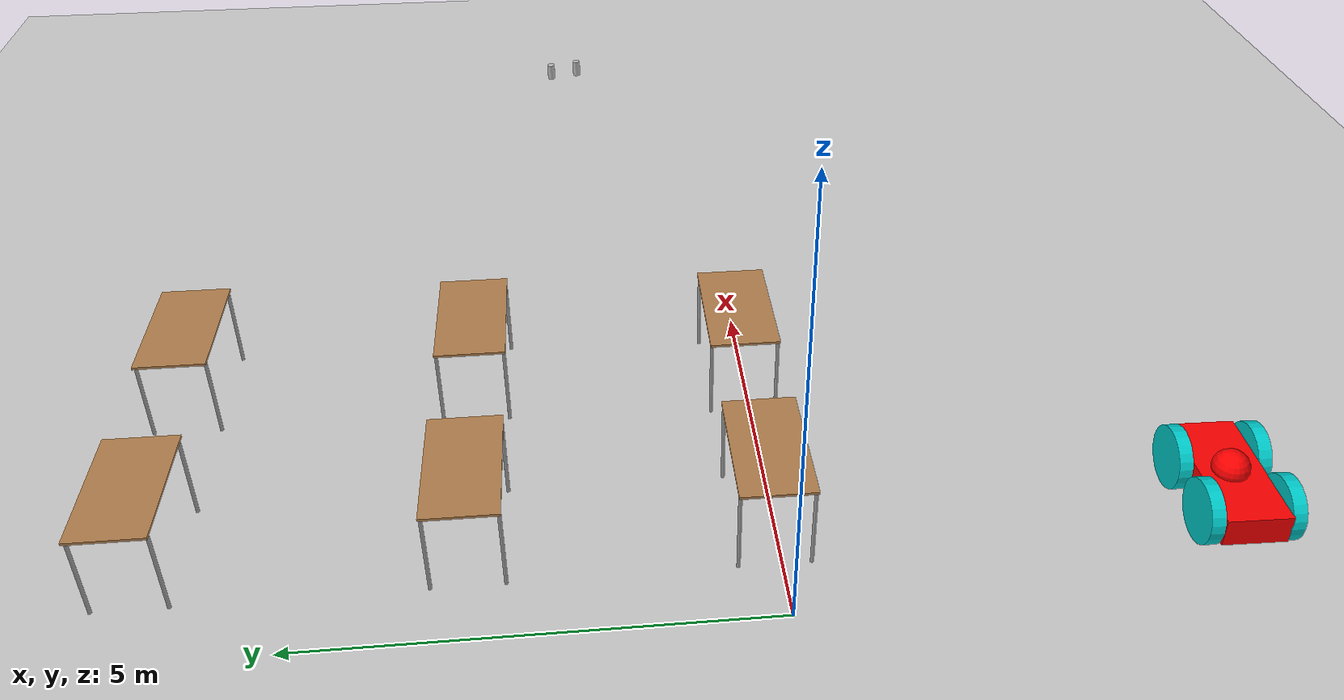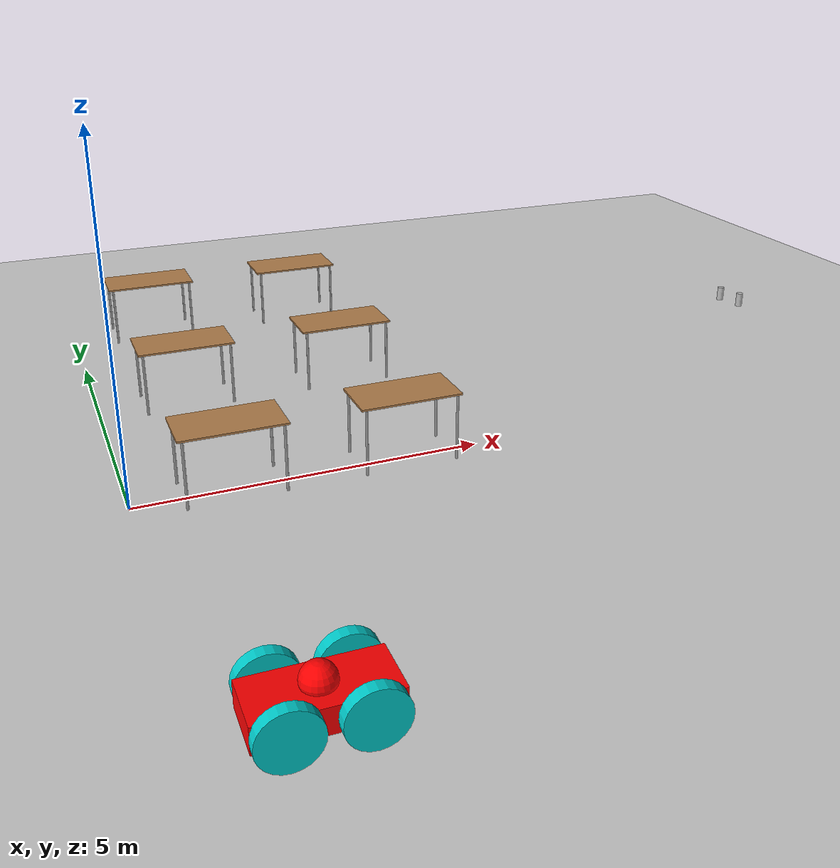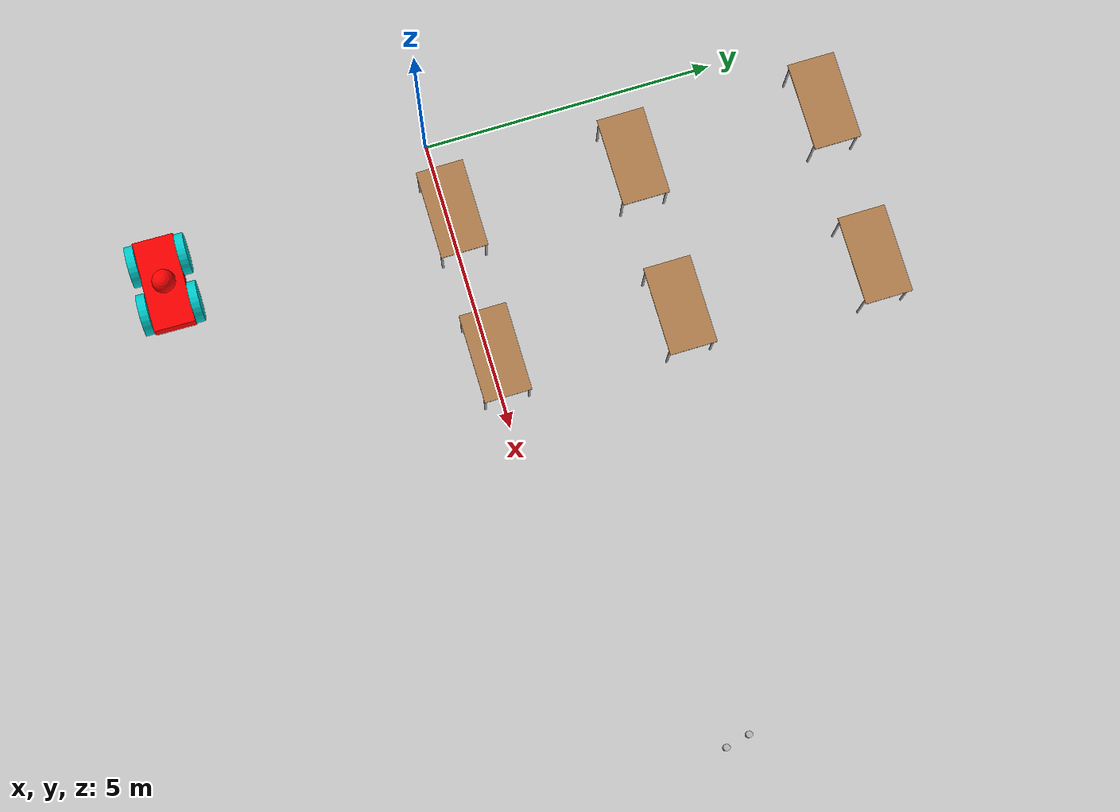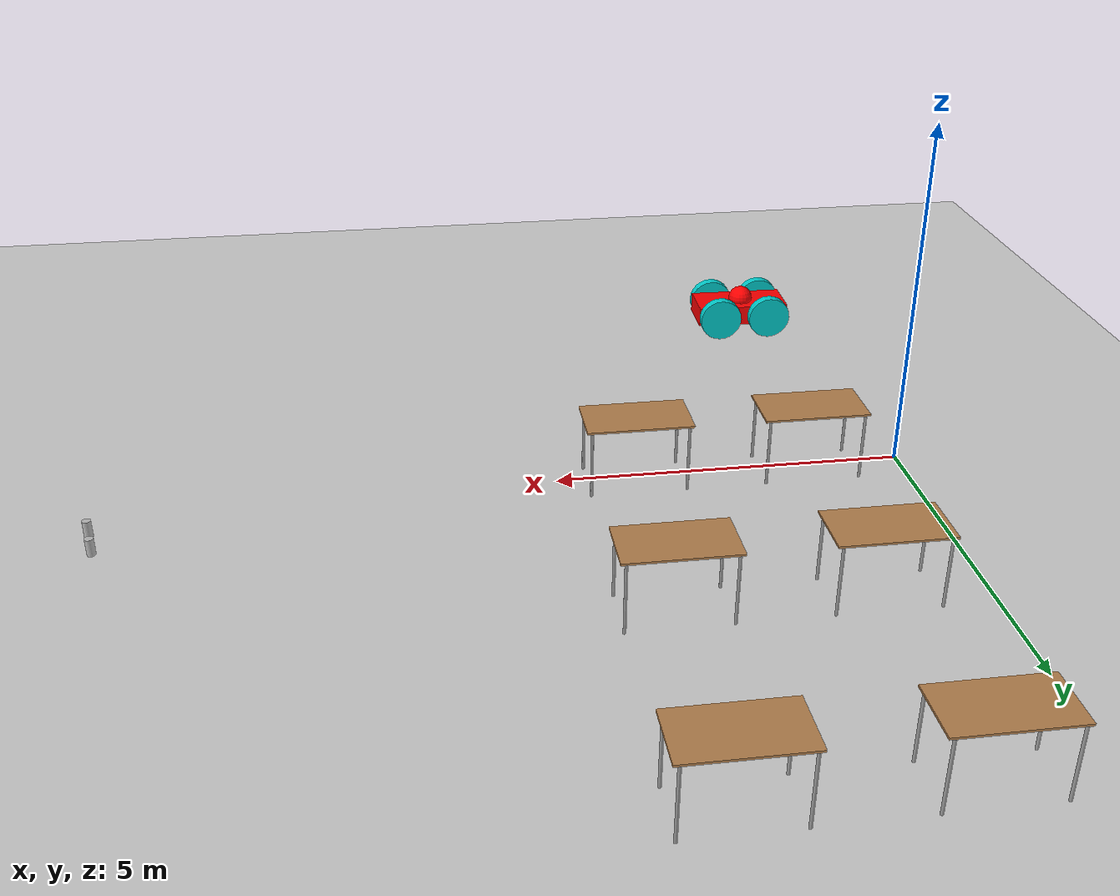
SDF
<sdf version="1.6">
 <world name="default">
  <model name="ground_plane">
   <static>1</static>
   <link name="link">
    <collision name="collision">
     <geometry><plane><normal>0 0 1</normal><size>100 100</size></plane></geometry>
     <surface>
      <contact><collide_bitmask>65535</collide_bitmask></contact>
      <friction><ode><mu>100</mu><mu2>50</mu2></ode></friction>
     </surface>
    </collision>
    <visual name="visual">
     <cast_shadows>0</cast_shadows>
     <geometry><plane><normal>0 0 1</normal><size>100 100</size></plane></geometry>
     <material>
      <script><uri>file://media/materials/scripts/gazebo.material</uri><name>Gazebo/Grey</name></script>
     </material>
    </visual>
   </link>
  </model>
  <model name="table">
   <static>1</static>
   <link name="link">
    <collision name="surface">
     <pose>0 0 1 0 -0 0</pose>
     <geometry><box><size>1.5 0.8 0.03</size></box></geometry>
     <surface><friction><ode><mu>0.6</mu><mu2>0.6</mu2></ode></friction></surface>
    </collision>
    <visual name="visual1">
     <pose>0 0 1 0 -0 0</pose>
     <geometry><box><size>1.5 0.8 0.03</size></box></geometry>
     <material>
      <script><uri>file://media/materials/scripts/gazebo.material</uri><name>Gazebo/Wood</name></script>
     </material>
    </visual>
    <collision name="front_left_leg">
     <pose>0.68 0.38 0.5 0 -0 0</pose>
     <geometry><cylinder><radius>0.02</radius><length>1</length></cylinder></geometry>
    </collision>
    <visual name="front_left_leg">
     <pose>0.68 0.38 0.5 0 -0 0</pose>
     <geometry><cylinder><radius>0.02</radius><length>1</length></cylinder></geometry>
     <material>
      <script><uri>file://media/materials/scripts/gazebo.material</uri><name>Gazebo/Grey</name></script>
     </material>
    </visual>
    <collision name="front_right_leg">
     <pose>0.68 -0.38 0.5 0 -0 0</pose>
     <geometry><cylinder><radius>0.02</radius><length>1</length></cylinder></geometry>
    </collision>
    <visual name="front_right_leg">
     <pose>0.68 -0.38 0.5 0 -0 0</pose>
     <geometry><cylinder><radius>0.02</radius><length>1</length></cylinder></geometry>
     <material>
      <script><uri>file://media/materials/scripts/gazebo.material</uri><name>Gazebo/Grey</name></script>
     </material>
    </visual>
    <collision name="back_right_leg">
     <pose>-0.68 -0.38 0.5 0 -0 0</pose>
     <geometry><cylinder><radius>0.02</radius><length>1</length></cylinder></geometry>
    </collision>
    <visual name="back_right_leg">
     <pose>-0.68 -0.38 0.5 0 -0 0</pose>
     <geometry><cylinder><radius>0.02</radius><length>1</length></cylinder></geometry>
     <material>
      <script><uri>file://media/materials/scripts/gazebo.material</uri><name>Gazebo/Grey</name></script>
     </material>
    </visual>
    <collision name="back_left_leg">
     <pose>-0.68 0.38 0.5 0 -0 0</pose>
     <geometry><cylinder><radius>0.02</radius><length>1</length></cylinder></geometry>
    </collision>
    <visual name="back_left_leg">
     <pose>-0.68 0.38 0.5 0 -0 0</pose>
     <geometry><cylinder><radius>0.02</radius><length>1</length></cylinder></geometry>
     <material>
      <script><uri>file://media/materials/scripts/gazebo.material</uri><name>Gazebo/Grey</name></script>
     </material>
    </visual>
   </link>
   <pose>1.38828 6.49824 0 0 -0 0</pose>
  </model>
  <model name="table_clone">
   <static>1</static>
   <link name="link">
    <collision name="surface">
     <pose>0 0 1 0 -0 0</pose>
     <geometry><box><size>1.5 0.8 0.03</size></box></geometry>
     <surface><friction><ode><mu>0.6</mu><mu2>0.6</mu2></ode></friction></surface>
    </collision>
    <visual name="visual1">
     <pose>0 0 1 0 -0 0</pose>
     <geometry><box><size>1.5 0.8 0.03</size></box></geometry>
     <material>
      <script><uri>file://media/materials/scripts/gazebo.material</uri><name>Gazebo/Wood</name></script>
     </material>
    </visual>
    <collision name="front_left_leg">
     <pose>0.68 0.38 0.5 0 -0 0</pose>
     <geometry><cylinder><radius>0.02</radius><length>1</length></cylinder></geometry>
    </collision>
    <visual name="front_left_leg">
     <pose>0.68 0.38 0.5 0 -0 0</pose>
     <geometry><cylinder><radius>0.02</radius><length>1</length></cylinder></geometry>
     <material>
      <script><uri>file://media/materials/scripts/gazebo.material</uri><name>Gazebo/Grey</name></script>
     </material>
    </visual>
    <collision name="front_right_leg">
     <pose>0.68 -0.38 0.5 0 -0 0</pose>
     <geometry><cylinder><radius>0.02</radius><length>1</length></cylinder></geometry>
    </collision>
    <visual name="front_right_leg">
     <pose>0.68 -0.38 0.5 0 -0 0</pose>
     <geometry><cylinder><radius>0.02</radius><length>1</length></cylinder></geometry>
     <material>
      <script><uri>file://media/materials/scripts/gazebo.material</uri><name>Gazebo/Grey</name></script>
     </material>
    </visual>
    <collision name="back_right_leg">
     <pose>-0.68 -0.38 0.5 0 -0 0</pose>
     <geometry><cylinder><radius>0.02</radius><length>1</length></cylinder></geometry>
    </collision>
    <visual name="back_right_leg">
     <pose>-0.68 -0.38 0.5 0 -0 0</pose>
     <geometry><cylinder><radius>0.02</radius><length>1</length></cylinder></geometry>
     <material>
      <script><uri>file://media/materials/scripts/gazebo.material</uri><name>Gazebo/Grey</name></script>
     </material>
    </visual>
    <collision name="back_left_leg">
     <pose>-0.68 0.38 0.5 0 -0 0</pose>
     <geometry><cylinder><radius>0.02</radius><length>1</length></cylinder></geometry>
    </collision>
    <visual name="back_left_leg">
     <pose>-0.68 0.38 0.5 0 -0 0</pose>
     <geometry><cylinder><radius>0.02</radius><length>1</length></cylinder></geometry>
     <material>
      <script><uri>file://media/materials/scripts/gazebo.material</uri><name>Gazebo/Grey</name></script>
     </material>
    </visual>
   </link>
   <pose>1.38828 3.1901 0 0 -0 0</pose>
  </model>
  <model name="table_clone_0">
   <static>1</static>
   <link name="link">
    <collision name="surface">
     <pose>0 0 1 0 -0 0</pose>
     <geometry><box><size>1.5 0.8 0.03</size></box></geometry>
     <surface><friction><ode><mu>0.6</mu><mu2>0.6</mu2></ode></friction></surface>
    </collision>
    <visual name="visual1">
     <pose>0 0 1 0 -0 0</pose>
     <geometry><box><size>1.5 0.8 0.03</size></box></geometry>
     <material>
      <script><uri>file://media/materials/scripts/gazebo.material</uri><name>Gazebo/Wood</name></script>
     </material>
    </visual>
    <collision name="front_left_leg">
     <pose>0.68 0.38 0.5 0 -0 0</pose>
     <geometry><cylinder><radius>0.02</radius><length>1</length></cylinder></geometry>
    </collision>
    <visual name="front_left_leg">
     <pose>0.68 0.38 0.5 0 -0 0</pose>
     <geometry><cylinder><radius>0.02</radius><length>1</length></cylinder></geometry>
     <material>
      <script><uri>file://media/materials/scripts/gazebo.material</uri><name>Gazebo/Grey</name></script>
     </material>
    </visual>
    <collision name="front_right_leg">
     <pose>0.68 -0.38 0.5 0 -0 0</pose>
     <geometry><cylinder><radius>0.02</radius><length>1</length></cylinder></geometry>
    </collision>
    <visual name="front_right_leg">
     <pose>0.68 -0.38 0.5 0 -0 0</pose>
     <geometry><cylinder><radius>0.02</radius><length>1</length></cylinder></geometry>
     <material>
      <script><uri>file://media/materials/scripts/gazebo.material</uri><name>Gazebo/Grey</name></script>
     </material>
    </visual>
    <collision name="back_right_leg">
     <pose>-0.68 -0.38 0.5 0 -0 0</pose>
     <geometry><cylinder><radius>0.02</radius><length>1</length></cylinder></geometry>
    </collision>
    <visual name="back_right_leg">
     <pose>-0.68 -0.38 0.5 0 -0 0</pose>
     <geometry><cylinder><radius>0.02</radius><length>1</length></cylinder></geometry>
     <material>
      <script><uri>file://media/materials/scripts/gazebo.material</uri><name>Gazebo/Grey</name></script>
     </material>
    </visual>
    <collision name="back_left_leg">
     <pose>-0.68 0.38 0.5 0 -0 0</pose>
     <geometry><cylinder><radius>0.02</radius><length>1</length></cylinder></geometry>
    </collision>
    <visual name="back_left_leg">
     <pose>-0.68 0.38 0.5 0 -0 0</pose>
     <geometry><cylinder><radius>0.02</radius><length>1</length></cylinder></geometry>
     <material>
      <script><uri>file://media/materials/scripts/gazebo.material</uri><name>Gazebo/Grey</name></script>
     </material>
    </visual>
   </link>
   <pose>1.38828 0.075676 0 0 -0 0</pose>
  </model>
  <model name="beer">
   <link name="link">
    <pose>0 0 0.115 0 -0 0</pose>
    <inertial>
     <mass>0.39</mass>
     <inertia><ixx>0.00058</ixx><ixy>0</ixy><ixz>0</ixz><iyy>0.00058</iyy><iyz>0</iyz><izz>0.00019</izz></inertia>
    </inertial>
    <collision name="collision">
     <geometry><cylinder><radius>0.055</radius><length>0.23</length></cylinder></geometry>
    </collision>
    <visual name="visual">
     <geometry><cylinder><radius>0.055</radius><length>0.23</length></cylinder></geometry>
     <material>
      <script>
       <uri>model://beer/materials/scripts</uri>
       <uri>model://beer/materials/textures</uri>
       <name>Beer/Diffuse</name>
      </script>
     </material>
    </visual>
   </link>
   <pose>10.9311 2.1855 0.775002 -2.8e-05 -5e-06 0.000611</pose>
  </model>
  <model name="beer_clone_0">
   <link name="link">
    <pose>0 0 0.115 0 -0 0</pose>
    <inertial>
     <mass>0.39</mass>
     <inertia><ixx>0.00058</ixx><ixy>0</ixy><ixz>0</ixz><iyy>0.00058</iyy><iyz>0</iyz><izz>0.00019</izz></inertia>
    </inertial>
    <collision name="collision">
     <geometry><cylinder><radius>0.055</radius><length>0.23</length></cylinder></geometry>
    </collision>
    <visual name="visual">
     <geometry><cylinder><radius>0.055</radius><length>0.23</length></cylinder></geometry>
     <material>
      <script>
       <uri>model://beer/materials/scripts</uri>
       <uri>model://beer/materials/textures</uri>
       <name>Beer/Diffuse</name>
      </script>
     </material>
    </visual>
   </link>
   <pose>11.0273 1.78069 0.77499 -1e-06 2.6e-05 0.000201</pose>
  </model>
  <model name="table_clone_5">
   <static>1</static>
   <link name="link">
    <collision name="surface">
     <pose>0 0 1 0 -0 0</pose>
     <geometry><box><size>1.5 0.8 0.03</size></box></geometry>
     <surface><friction><ode><mu>0.6</mu><mu2>0.6</mu2></ode></friction></surface>
    </collision>
    <visual name="visual1">
     <pose>0 0 1 0 -0 0</pose>
     <geometry><box><size>1.5 0.8 0.03</size></box></geometry>
     <material>
      <script><uri>file://media/materials/scripts/gazebo.material</uri><name>Gazebo/Wood</name></script>
     </material>
    </visual>
    <collision name="front_left_leg">
     <pose>0.68 0.38 0.5 0 -0 0</pose>
     <geometry><cylinder><radius>0.02</radius><length>1</length></cylinder></geometry>
    </collision>
    <visual name="front_left_leg">
     <pose>0.68 0.38 0.5 0 -0 0</pose>
     <geometry><cylinder><radius>0.02</radius><length>1</length></cylinder></geometry>
     <material>
      <script><uri>file://media/materials/scripts/gazebo.material</uri><name>Gazebo/Grey</name></script>
     </material>
    </visual>
    <collision name="front_right_leg">
     <pose>0.68 -0.38 0.5 0 -0 0</pose>
     <geometry><cylinder><radius>0.02</radius><length>1</length></cylinder></geometry>
    </collision>
    <visual name="front_right_leg">
     <pose>0.68 -0.38 0.5 0 -0 0</pose>
     <geometry><cylinder><radius>0.02</radius><length>1</length></cylinder></geometry>
     <material>
      <script><uri>file://media/materials/scripts/gazebo.material</uri><name>Gazebo/Grey</name></script>
     </material>
    </visual>
    <collision name="back_right_leg">
     <pose>-0.68 -0.38 0.5 0 -0 0</pose>
     <geometry><cylinder><radius>0.02</radius><length>1</length></cylinder></geometry>
    </collision>
    <visual name="back_right_leg">
     <pose>-0.68 -0.38 0.5 0 -0 0</pose>
     <geometry><cylinder><radius>0.02</radius><length>1</length></cylinder></geometry>
     <material>
      <script><uri>file://media/materials/scripts/gazebo.material</uri><name>Gazebo/Grey</name></script>
     </material>
    </visual>
    <collision name="back_left_leg">
     <pose>-0.68 0.38 0.5 0 -0 0</pose>
     <geometry><cylinder><radius>0.02</radius><length>1</length></cylinder></geometry>
    </collision>
    <visual name="back_left_leg">
     <pose>-0.68 0.38 0.5 0 -0 0</pose>
     <geometry><cylinder><radius>0.02</radius><length>1</length></cylinder></geometry>
     <material>
      <script><uri>file://media/materials/scripts/gazebo.material</uri><name>Gazebo/Grey</name></script>
     </material>
    </visual>
   </link>
   <pose>4.10356 6.49824 0 0 -0 0</pose>
  </model>
  <model name="table_clone_6">
   <static>1</static>
   <link name="link">
    <collision name="surface">
     <pose>0 0 1 0 -0 0</pose>
     <geometry><box><size>1.5 0.8 0.03</size></box></geometry>
     <surface><friction><ode><mu>0.6</mu><mu2>0.6</mu2></ode></friction></surface>
    </collision>
    <visual name="visual1">
     <pose>0 0 1 0 -0 0</pose>
     <geometry><box><size>1.5 0.8 0.03</size></box></geometry>
     <material>
      <script><uri>file://media/materials/scripts/gazebo.material</uri><name>Gazebo/Wood</name></script>
     </material>
    </visual>
    <collision name="front_left_leg">
     <pose>0.68 0.38 0.5 0 -0 0</pose>
     <geometry><cylinder><radius>0.02</radius><length>1</length></cylinder></geometry>
    </collision>
    <visual name="front_left_leg">
     <pose>0.68 0.38 0.5 0 -0 0</pose>
     <geometry><cylinder><radius>0.02</radius><length>1</length></cylinder></geometry>
     <material>
      <script><uri>file://media/materials/scripts/gazebo.material</uri><name>Gazebo/Grey</name></script>
     </material>
    </visual>
    <collision name="front_right_leg">
     <pose>0.68 -0.38 0.5 0 -0 0</pose>
     <geometry><cylinder><radius>0.02</radius><length>1</length></cylinder></geometry>
    </collision>
    <visual name="front_right_leg">
     <pose>0.68 -0.38 0.5 0 -0 0</pose>
     <geometry><cylinder><radius>0.02</radius><length>1</length></cylinder></geometry>
     <material>
      <script><uri>file://media/materials/scripts/gazebo.material</uri><name>Gazebo/Grey</name></script>
     </material>
    </visual>
    <collision name="back_right_leg">
     <pose>-0.68 -0.38 0.5 0 -0 0</pose>
     <geometry><cylinder><radius>0.02</radius><length>1</length></cylinder></geometry>
    </collision>
    <visual name="back_right_leg">
     <pose>-0.68 -0.38 0.5 0 -0 0</pose>
     <geometry><cylinder><radius>0.02</radius><length>1</length></cylinder></geometry>
     <material>
      <script><uri>file://media/materials/scripts/gazebo.material</uri><name>Gazebo/Grey</name></script>
     </material>
    </visual>
    <collision name="back_left_leg">
     <pose>-0.68 0.38 0.5 0 -0 0</pose>
     <geometry><cylinder><radius>0.02</radius><length>1</length></cylinder></geometry>
    </collision>
    <visual name="back_left_leg">
     <pose>-0.68 0.38 0.5 0 -0 0</pose>
     <geometry><cylinder><radius>0.02</radius><length>1</length></cylinder></geometry>
     <material>
      <script><uri>file://media/materials/scripts/gazebo.material</uri><name>Gazebo/Grey</name></script>
     </material>
    </visual>
   </link>
   <pose>4 3.1901 0 0 -0 0</pose>
  </model>
  <model name="table_clone_7">
   <static>1</static>
   <link name="link">
    <collision name="surface">
     <pose>0 0 1 0 -0 0</pose>
     <geometry><box><size>1.5 0.8 0.03</size></box></geometry>
     <surface><friction><ode><mu>0.6</mu><mu2>0.6</mu2></ode></friction></surface>
    </collision>
    <visual name="visual1">
     <pose>0 0 1 0 -0 0</pose>
     <geometry><box><size>1.5 0.8 0.03</size></box></geometry>
     <material>
      <script><uri>file://media/materials/scripts/gazebo.material</uri><name>Gazebo/Wood</name></script>
     </material>
    </visual>
    <collision name="front_left_leg">
     <pose>0.68 0.38 0.5 0 -0 0</pose>
     <geometry><cylinder><radius>0.02</radius><length>1</length></cylinder></geometry>
    </collision>
    <visual name="front_left_leg">
     <pose>0.68 0.38 0.5 0 -0 0</pose>
     <geometry><cylinder><radius>0.02</radius><length>1</length></cylinder></geometry>
     <material>
      <script><uri>file://media/materials/scripts/gazebo.material</uri><name>Gazebo/Grey</name></script>
     </material>
    </visual>
    <collision name="front_right_leg">
     <pose>0.68 -0.38 0.5 0 -0 0</pose>
     <geometry><cylinder><radius>0.02</radius><length>1</length></cylinder></geometry>
    </collision>
    <visual name="front_right_leg">
     <pose>0.68 -0.38 0.5 0 -0 0</pose>
     <geometry><cylinder><radius>0.02</radius><length>1</length></cylinder></geometry>
     <material>
      <script><uri>file://media/materials/scripts/gazebo.material</uri><name>Gazebo/Grey</name></script>
     </material>
    </visual>
    <collision name="back_right_leg">
     <pose>-0.68 -0.38 0.5 0 -0 0</pose>
     <geometry><cylinder><radius>0.02</radius><length>1</length></cylinder></geometry>
    </collision>
    <visual name="back_right_leg">
     <pose>-0.68 -0.38 0.5 0 -0 0</pose>
     <geometry><cylinder><radius>0.02</radius><length>1</length></cylinder></geometry>
     <material>
      <script><uri>file://media/materials/scripts/gazebo.material</uri><name>Gazebo/Grey</name></script>
     </material>
    </visual>
    <collision name="back_left_leg">
     <pose>-0.68 0.38 0.5 0 -0 0</pose>
     <geometry><cylinder><radius>0.02</radius><length>1</length></cylinder></geometry>
    </collision>
    <visual name="back_left_leg">
     <pose>-0.68 0.38 0.5 0 -0 0</pose>
     <geometry><cylinder><radius>0.02</radius><length>1</length></cylinder></geometry>
     <material>
      <script><uri>file://media/materials/scripts/gazebo.material</uri><name>Gazebo/Grey</name></script>
     </material>
    </visual>
   </link>
   <pose>3.89278 0.075676 0 0 -0 0</pose>
  </model>
  <model name="4wheeler">
   <link name="link_0">
    <inertial>
     <mass>1.35085</mass>
     <inertia>
      <ixx>0.277852</ixx>
      <ixy>0</ixy>
      <ixz>0</ixz>
      <iyy>0.0669791</iyy>
      <iyz>0</iyz>
      <izz>0.321192</izz>
     </inertia>
    </inertial>
    <pose>0.011609 -0.00021 0.4 0 -0 0</pose>
    <visual name="visual">
     <geometry><box><size>0.7 1.53729 0.324029</size></box></geometry>
     <material>
      <lighting>1</lighting>
      <script><uri>file://media/materials/scripts/gazebo.material</uri><name>Gazebo/Grey</name></script>
      <shader type="pixel"><normal_map>__default__</normal_map></shader>
      <ambient>1 0 0 1</ambient>
      <diffuse>0.7 0.7 0.7 1</diffuse>
      <specular>0.01 0.01 0.01 1</specular>
      <emissive>0 0 0 1</emissive>
     </material>
    </visual>
    <collision name="collision">
     <geometry><box><size>0.7 1.53729 0.324029</size></box></geometry>
     <surface>
      <friction>
       <ode><mu>1</mu><mu2>1</mu2><fdir1>0 0 0</fdir1><slip1>0</slip1><slip2>0</slip2></ode>
       <torsional>
        <coefficient>1</coefficient>
        <patch_radius>0</patch_radius>
        <surface_radius>0</surface_radius>
        <use_patch_radius>1</use_patch_radius>
        <ode><slip>0</slip></ode>
       </torsional>
      </friction>
      <bounce><restitution_coefficient>0</restitution_coefficient><threshold>1e+06</threshold></bounce>
      <contact>
       <collide_without_contact>0</collide_without_contact>
       <collide_without_contact_bitmask>1</collide_without_contact_bitmask>
       <collide_bitmask>1</collide_bitmask>
       <ode>
        <soft_cfm>0</soft_cfm>
        <soft_erp>0.2</soft_erp>
        <kp>1e+13</kp>
        <kd>1</kd>
        <max_vel>0.01</max_vel>
        <min_depth>0</min_depth>
       </ode>
       <bullet>
        <split_impulse>1</split_impulse>
        <split_impulse_penetration_threshold>-0.01</split_impulse_penetration_threshold>
        <soft_cfm>0</soft_cfm>
        <soft_erp>0.2</soft_erp>
        <kp>1e+13</kp>
        <kd>1</kd>
       </bullet>
      </contact>
     </surface>
    </collision>
   </link>
   <link name="link_1_clone">
    <inertial>
     <mass>1</mass>
     <inertia><ixx>0.145833</ixx><ixy>0</ixy><ixz>0</ixz><iyy>0.145833</iyy><iyz>0</iyz><izz>0.125</izz></inertia>
    </inertial>
    <pose>0.44037 0.416058 0.4 1.5707 0 1.5707</pose>
    <visual name="visual">
     <geometry><cylinder><radius>0.35</radius><length>0.15</length></cylinder></geometry>
     <material>
      <lighting>1</lighting>
      <script><uri>file://media/materials/scripts/gazebo.material</uri><name>Gazebo/Grey</name></script>
      <shader type="pixel"><normal_map>__default__</normal_map></shader>
      <ambient>0 0.8 0.8 1</ambient>
      <diffuse>0.7 0.7 0.7 1</diffuse>
      <specular>0.01 0.01 0.01 1</specular>
      <emissive>0 0 0 1</emissive>
     </material>
    </visual>
    <collision name="collision">
     <geometry><cylinder><radius>0.35</radius><length>0.15</length></cylinder></geometry>
     <surface>
      <friction>
       <ode><mu>1</mu><mu2>1</mu2><fdir1>0 0 0</fdir1><slip1>0</slip1><slip2>0</slip2></ode>
       <torsional>
        <coefficient>1</coefficient>
        <patch_radius>0</patch_radius>
        <surface_radius>0</surface_radius>
        <use_patch_radius>1</use_patch_radius>
        <ode><slip>0</slip></ode>
       </torsional>
      </friction>
      <bounce><restitution_coefficient>0</restitution_coefficient><threshold>1e+06</threshold></bounce>
      <contact>
       <collide_without_contact>0</collide_without_contact>
       <collide_without_contact_bitmask>1</collide_without_contact_bitmask>
       <collide_bitmask>1</collide_bitmask>
       <ode>
        <soft_cfm>0</soft_cfm>
        <soft_erp>0.2</soft_erp>
        <kp>1e+13</kp>
        <kd>1</kd>
        <max_vel>0.01</max_vel>
        <min_depth>0</min_depth>
       </ode>
       <bullet>
        <split_impulse>1</split_impulse>
        <split_impulse_penetration_threshold>-0.01</split_impulse_penetration_threshold>
        <soft_cfm>0</soft_cfm>
        <soft_erp>0.2</soft_erp>
        <kp>1e+13</kp>
        <kd>1</kd>
       </bullet>
      </contact>
     </surface>
    </collision>
   </link>
   <link name="link_1_clone_clone">
    <inertial>
     <mass>1</mass>
     <inertia><ixx>0.145833</ixx><ixy>0</ixy><ixz>0</ixz><iyy>0.145833</iyy><iyz>0</iyz><izz>0.125</izz></inertia>
    </inertial>
    <pose>0.431165 -0.424592 0.4 1.5707 0 1.5707</pose>
    <visual name="visual">
     <geometry><cylinder><radius>0.35</radius><length>0.15</length></cylinder></geometry>
     <material>
      <lighting>1</lighting>
      <script><uri>file://media/materials/scripts/gazebo.material</uri><name>Gazebo/Grey</name></script>
      <shader type="pixel"><normal_map>__default__</normal_map></shader>
      <ambient>0 0.8 0.8 1</ambient>
      <diffuse>0.7 0.7 0.7 1</diffuse>
      <specular>0.01 0.01 0.01 1</specular>
      <emissive>0 0 0 1</emissive>
     </material>
    </visual>
    <collision name="collision">
     <geometry><cylinder><radius>0.35</radius><length>0.15</length></cylinder></geometry>
     <surface>
      <friction>
       <ode><mu>1</mu><mu2>1</mu2><fdir1>0 0 0</fdir1><slip1>0</slip1><slip2>0</slip2></ode>
       <torsional>
        <coefficient>1</coefficient>
        <patch_radius>0</patch_radius>
        <surface_radius>0</surface_radius>
        <use_patch_radius>1</use_patch_radius>
        <ode><slip>0</slip></ode>
       </torsional>
      </friction>
      <bounce><restitution_coefficient>0</restitution_coefficient><threshold>1e+06</threshold></bounce>
      <contact>
       <collide_without_contact>0</collide_without_contact>
       <collide_without_contact_bitmask>1</collide_without_contact_bitmask>
       <collide_bitmask>1</collide_bitmask>
       <ode>
        <soft_cfm>0</soft_cfm>
        <soft_erp>0.2</soft_erp>
        <kp>1e+13</kp>
        <kd>1</kd>
        <max_vel>0.01</max_vel>
        <min_depth>0</min_depth>
       </ode>
       <bullet>
        <split_impulse>1</split_impulse>
        <split_impulse_penetration_threshold>-0.01</split_impulse_penetration_threshold>
        <soft_cfm>0</soft_cfm>
        <soft_erp>0.2</soft_erp>
        <kp>1e+13</kp>
        <kd>1</kd>
       </bullet>
      </contact>
     </surface>
    </collision>
   </link>
   <link name="link_1_clone_clone_0">
    <inertial>
     <mass>1</mass>
     <inertia><ixx>0.145833</ixx><ixy>0</ixy><ixz>0</ixz><iyy>0.145833</iyy><iyz>0</iyz><izz>0.125</izz></inertia>
    </inertial>
    <pose>-0.421453 0.42237 0.4 1.5707 0 1.5707</pose>
    <visual name="visual">
     <geometry><cylinder><radius>0.35</radius><length>0.15</length></cylinder></geometry>
     <material>
      <lighting>1</lighting>
      <script><uri>file://media/materials/scripts/gazebo.material</uri><name>Gazebo/Grey</name></script>
      <shader type="pixel"><normal_map>__default__</normal_map></shader>
      <ambient>0 0.8 0.8 1</ambient>
      <diffuse>0.7 0.7 0.7 1</diffuse>
      <specular>0.01 0.01 0.01 1</specular>
      <emissive>0 0 0 1</emissive>
     </material>
    </visual>
    <collision name="collision">
     <geometry><cylinder><radius>0.35</radius><length>0.15</length></cylinder></geometry>
     <surface>
      <friction>
       <ode><mu>1</mu><mu2>1</mu2><fdir1>0 0 0</fdir1><slip1>0</slip1><slip2>0</slip2></ode>
       <torsional>
        <coefficient>1</coefficient>
        <patch_radius>0</patch_radius>
        <surface_radius>0</surface_radius>
        <use_patch_radius>1</use_patch_radius>
        <ode><slip>0</slip></ode>
       </torsional>
      </friction>
      <bounce><restitution_coefficient>0</restitution_coefficient><threshold>1e+06</threshold></bounce>
      <contact>
       <collide_without_contact>0</collide_without_contact>
       <collide_without_contact_bitmask>1</collide_without_contact_bitmask>
       <collide_bitmask>1</collide_bitmask>
       <ode>
        <soft_cfm>0</soft_cfm>
        <soft_erp>0.2</soft_erp>
        <kp>1e+13</kp>
        <kd>1</kd>
        <max_vel>0.01</max_vel>
        <min_depth>0</min_depth>
       </ode>
       <bullet>
        <split_impulse>1</split_impulse>
        <split_impulse_penetration_threshold>-0.01</split_impulse_penetration_threshold>
        <soft_cfm>0</soft_cfm>
        <soft_erp>0.2</soft_erp>
        <kp>1e+13</kp>
        <kd>1</kd>
       </bullet>
      </contact>
     </surface>
    </collision>
   </link>
   <link name="link_1_clone_clone_clone">
    <inertial>
     <mass>1</mass>
     <inertia><ixx>0.145833</ixx><ixy>0</ixy><ixz>0</ixz><iyy>0.145833</iyy><iyz>0</iyz><izz>0.125</izz></inertia>
    </inertial>
    <pose>-0.415948 -0.421035 0.4 1.5707 0 1.5707</pose>
    <visual name="visual">
     <geometry><cylinder><radius>0.35</radius><length>0.15</length></cylinder></geometry>
     <material>
      <lighting>1</lighting>
      <script><uri>file://media/materials/scripts/gazebo.material</uri><name>Gazebo/Grey</name></script>
      <shader type="pixel"><normal_map>__default__</normal_map></shader>
      <ambient>0 0.8 0.8 1</ambient>
      <diffuse>0.7 0.7 0.7 1</diffuse>
      <specular>0.01 0.01 0.01 1</specular>
      <emissive>0 0 0 1</emissive>
     </material>
    </visual>
    <collision name="collision">
     <geometry><cylinder><radius>0.35</radius><length>0.15</length></cylinder></geometry>
     <surface>
      <friction>
       <ode><mu>1</mu><mu2>1</mu2><fdir1>0 0 0</fdir1><slip1>0</slip1><slip2>0</slip2></ode>
       <torsional>
        <coefficient>1</coefficient>
        <patch_radius>0</patch_radius>
        <surface_radius>0</surface_radius>
        <use_patch_radius>1</use_patch_radius>
        <ode><slip>0</slip></ode>
       </torsional>
      </friction>
      <bounce><restitution_coefficient>0</restitution_coefficient><threshold>1e+06</threshold></bounce>
      <contact>
       <collide_without_contact>0</collide_without_contact>
       <collide_without_contact_bitmask>1</collide_without_contact_bitmask>
       <collide_bitmask>1</collide_bitmask>
       <ode>
        <soft_cfm>0</soft_cfm>
        <soft_erp>0.2</soft_erp>
        <kp>1e+13</kp>
        <kd>1</kd>
        <max_vel>0.01</max_vel>
        <min_depth>0</min_depth>
       </ode>
       <bullet>
        <split_impulse>1</split_impulse>
        <split_impulse_penetration_threshold>-0.01</split_impulse_penetration_threshold>
        <soft_cfm>0</soft_cfm>
        <soft_erp>0.2</soft_erp>
        <kp>1e+13</kp>
        <kd>1</kd>
       </bullet>
      </contact>
     </surface>
    </collision>
   </link>
   <link name="link_5">
    <inertial>
     <mass>1</mass>
     <inertia><ixx>0.1</ixx><ixy>0</ixy><ixz>0</ixz><iyy>0.1</iyy><iyz>0</iyz><izz>0.1</izz></inertia>
    </inertial>
    <pose>-0.001788 -0.009431 0.6 0 -0 0</pose>
    <visual name="visual">
     <geometry><sphere><radius>0.2</radius></sphere></geometry>
     <material>
      <lighting>1</lighting>
      <script><uri>file://media/materials/scripts/gazebo.material</uri><name>Gazebo/Grey</name></script>
      <shader type="pixel"><normal_map>__default__</normal_map></shader>
      <ambient>1 0 0 1</ambient>
      <diffuse>0.7 0.7 0.7 1</diffuse>
      <specular>0.01 0.01 0.01 1</specular>
      <emissive>0 0 0 1</emissive>
     </material>
    </visual>
    <collision name="collision">
     <geometry><sphere><radius>0.2</radius></sphere></geometry>
     <surface>
      <friction>
       <ode><mu>1</mu><mu2>1</mu2><fdir1>0 0 0</fdir1><slip1>0</slip1><slip2>0</slip2></ode>
       <torsional>
        <coefficient>1</coefficient>
        <patch_radius>0</patch_radius>
        <surface_radius>0</surface_radius>
        <use_patch_radius>1</use_patch_radius>
        <ode><slip>0</slip></ode>
       </torsional>
      </friction>
      <bounce><restitution_coefficient>0</restitution_coefficient><threshold>1e+06</threshold></bounce>
      <contact>
       <collide_without_contact>0</collide_without_contact>
       <collide_without_contact_bitmask>1</collide_without_contact_bitmask>
       <collide_bitmask>1</collide_bitmask>
       <ode>
        <soft_cfm>0</soft_cfm>
        <soft_erp>0.2</soft_erp>
        <kp>1e+13</kp>
        <kd>1</kd>
        <max_vel>0.01</max_vel>
        <min_depth>0</min_depth>
       </ode>
       <bullet>
        <split_impulse>1</split_impulse>
        <split_impulse_penetration_threshold>-0.01</split_impulse_penetration_threshold>
        <soft_cfm>0</soft_cfm>
        <soft_erp>0.2</soft_erp>
        <kp>1e+13</kp>
        <kd>1</kd>
       </bullet>
      </contact>
     </surface>
    </collision>
   </link>
   <joint name="link_0_JOINT_0" type="revolute">
    <parent>link_0</parent>
    <child>link_1_clone</child>
    <axis>
     <xyz>0 0 1</xyz>
     <use_parent_model_frame>0</use_parent_model_frame>
     <limit>
      <lower>-1.79769e+308</lower>
      <upper>1.79769e+308</upper>
      <effort>-1</effort>
      <velocity>-1</velocity>
     </limit>
     <dynamics>
      <spring_reference>0</spring_reference>
      <spring_stiffness>0</spring_stiffness>
      <damping>0</damping>
      <friction>0</friction>
     </dynamics>
    </axis>
    <physics>
     <ode><limit><cfm>0</cfm><erp>0.2</erp></limit><suspension><cfm>0</cfm><erp>0.2</erp></suspension></ode>
    </physics>
   </joint>
   <joint name="link_0_JOINT_1" type="revolute">
    <parent>link_0</parent>
    <child>link_1_clone_clone</child>
    <axis>
     <xyz>0 0 1</xyz>
     <use_parent_model_frame>0</use_parent_model_frame>
     <limit>
      <lower>-1.79769e+308</lower>
      <upper>1.79769e+308</upper>
      <effort>-1</effort>
      <velocity>-1</velocity>
     </limit>
     <dynamics>
      <spring_reference>0</spring_reference>
      <spring_stiffness>0</spring_stiffness>
      <damping>0</damping>
      <friction>0</friction>
     </dynamics>
    </axis>
    <physics>
     <ode><limit><cfm>0</cfm><erp>0.2</erp></limit><suspension><cfm>0</cfm><erp>0.2</erp></suspension></ode>
    </physics>
   </joint>
   <joint name="link_0_JOINT_2" type="revolute">
    <parent>link_0</parent>
    <child>link_1_clone_clone_clone</child>
    <axis>
     <xyz>0 0 1</xyz>
     <use_parent_model_frame>0</use_parent_model_frame>
     <limit>
      <lower>-1.79769e+308</lower>
      <upper>1.79769e+308</upper>
      <effort>-1</effort>
      <velocity>-1</velocity>
     </limit>
     <dynamics>
      <spring_reference>0</spring_reference>
      <spring_stiffness>0</spring_stiffness>
      <damping>0</damping>
      <friction>0</friction>
     </dynamics>
    </axis>
    <physics>
     <ode><limit><cfm>0</cfm><erp>0.2</erp></limit><suspension><cfm>0</cfm><erp>0.2</erp></suspension></ode>
    </physics>
   </joint>
   <joint name="link_0_JOINT_3" type="revolute">
    <parent>link_0</parent>
    <child>link_1_clone_clone_0</child>
    <axis>
     <xyz>1 0 0</xyz>
     <use_parent_model_frame>0</use_parent_model_frame>
     <limit>
      <lower>-1.79769e+308</lower>
      <upper>1.79769e+308</upper>
      <effort>-1</effort>
      <velocity>-1</velocity>
     </limit>
     <dynamics>
      <spring_reference>0</spring_reference>
      <spring_stiffness>0</spring_stiffness>
      <damping>0</damping>
      <friction>0</friction>
     </dynamics>
    </axis>
    <physics>
     <ode><limit><cfm>0</cfm><erp>0.2</erp></limit><suspension><cfm>0</cfm><erp>0.2</erp></suspension></ode>
    </physics>
   </joint>
   <joint name="link_0_JOINT_4" type="fixed">
    <parent>link_0</parent>
    <child>link_5</child>
    <physics>
     <ode><limit><cfm>0</cfm><erp>0.2</erp></limit><suspension><cfm>0</cfm><erp>0.2</erp></suspension></ode>
    </physics>
   </joint>
   <static>0</static>
   <pose>1.10163 -4.8202 -0.049993 3e-06 -4e-06 -1.59087</pose>
  </model>
 </world>
</sdf>
